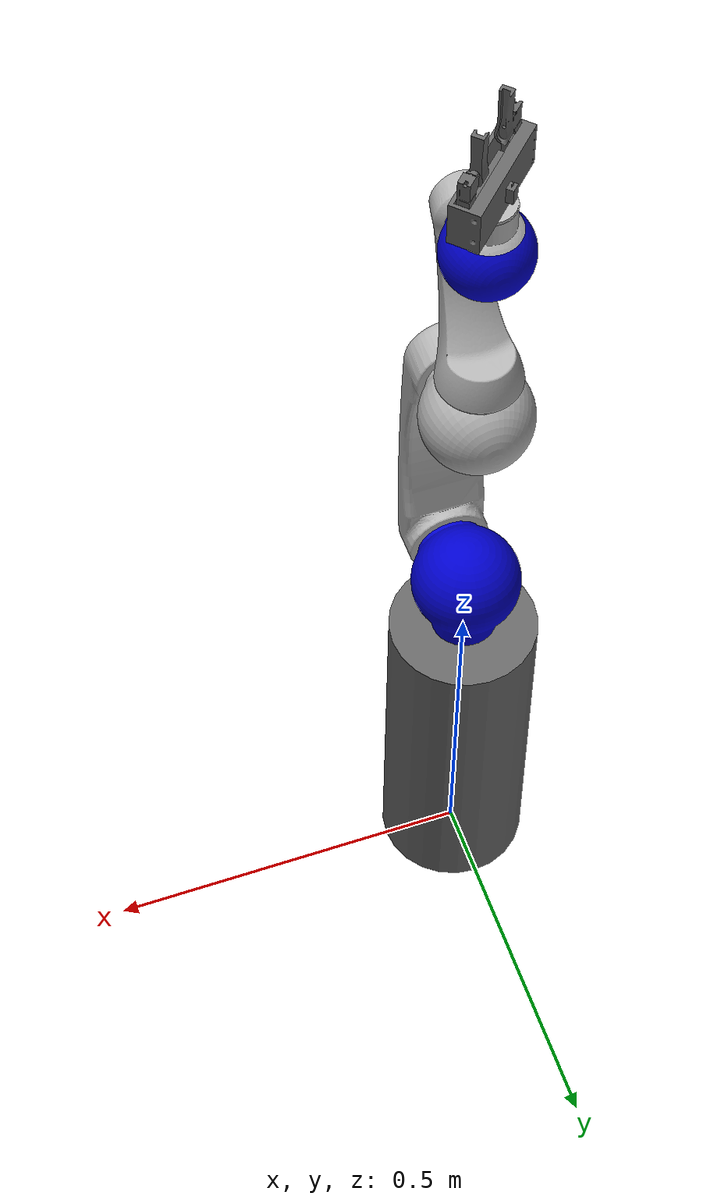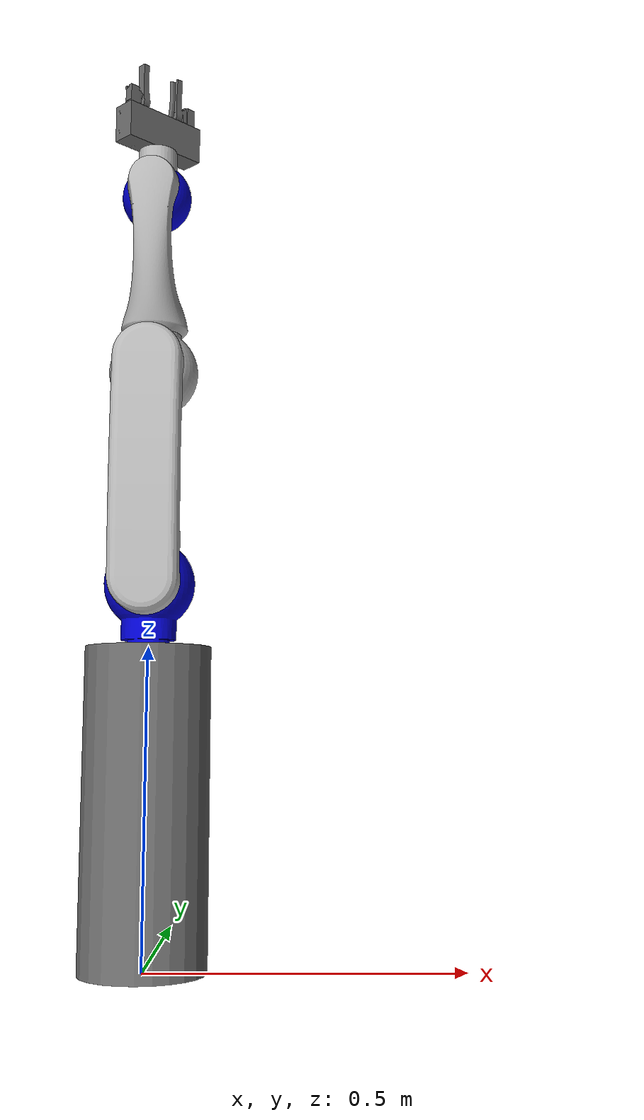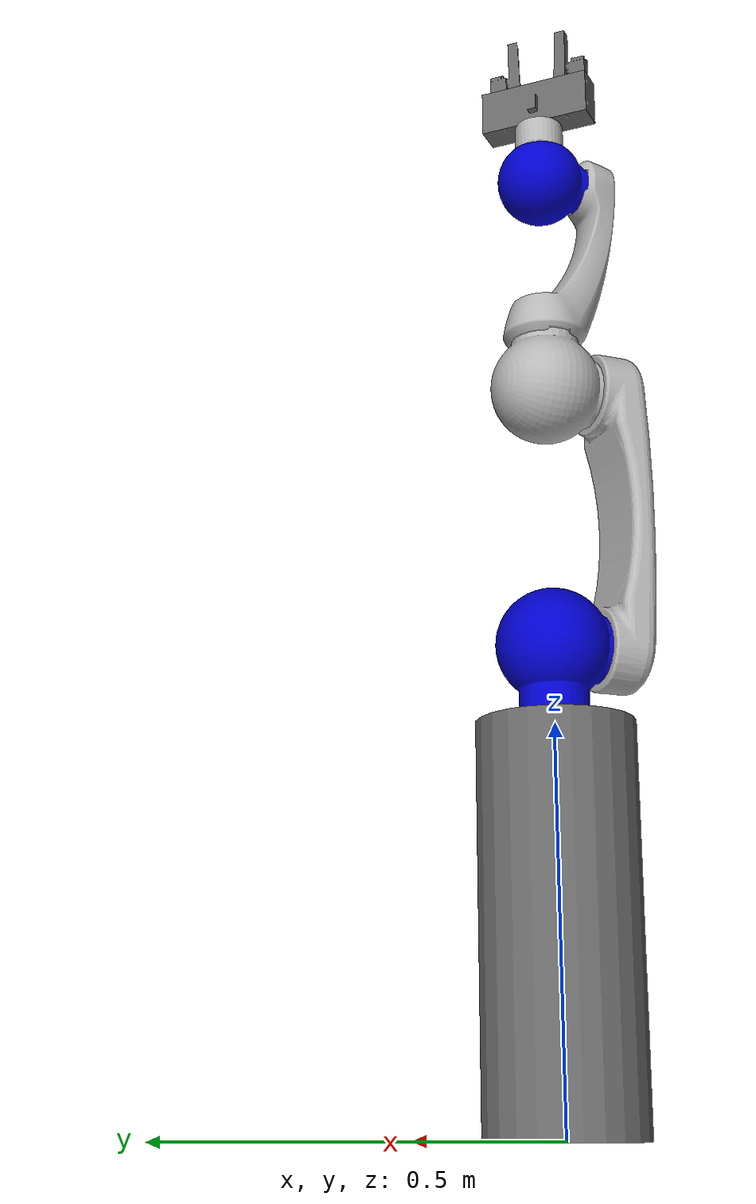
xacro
<?xml version="1.0" encoding="utf-8"?>
<robot xmlns:xacro="http://www.ros.org/wiki/xacro" name="lwa4p">
  <xacro:arg name="gazebo" default="true"/>

  <!-- includes -->
  <xacro:include filename="$(find schunk_lwa4p_description)/urdf/lwa4p/lwa4p_arm.xacro" >
  	<xacro:arg name="gazebo" value="${gazebo}"/>
  </xacro:include>
  <xacro:include filename="$(find schunk_lwa4p_description)/urdf/tools/hand.xacro"/>

   <!-- foot for arm -->
	<link name="base_link">
		<visual>
		   <origin xyz="0 0 0.25" rpy="0 0 0" />
		   <geometry>
			  <cylinder radius="0.1" length="0.5"/>
		   </geometry>
		   <material name="Schunk/DarkGrey" />
		</visual>
		<collision>
		   <origin xyz="0 0 0.25" rpy="0 0 0" />
		   <geometry>
			  <cylinder radius="0.1" length="0.5"/>
		   </geometry>
		</collision>
		<inertial>
		   <origin xyz="0 0 0.25" rpy="0 0 0"/>
		   <mass value="10000.0"/>
		   <inertia ixx="10000.0"  ixy="0"  ixz="0" iyy="10000.0" iyz="0" izz="10000.0" />
		</inertial>
	</link>

  <!-- arm -->
  <xacro:lwa4p_arm arm_id="lwa4p" parent="base_link" has_podest="true" >
    <origin xyz="0 0 0.50" rpy="0 0 0" />
  </xacro:lwa4p_arm>

  <!-- tool -->
  <xacro:hand ns="lwa4p" rpy="0 0 ${-pi/4}" connected_to="lwa4p_link6" safety_distance="0.03"/>

</robot>

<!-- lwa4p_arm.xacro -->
<robot xmlns:xacro="http://www.ros.org/wiki/xacro" name="lwa4p">

  <xacro:macro name="lwa4p_arm" params="parent arm_id *origin has_podest">

    <xacro:include filename="$(find schunk_lwa4p_description)/urdf/common.xacro"/>
    <xacro:property name="safety_offset" value="0.02"/>
    <xacro:property name="dynamics_damping" value="0.5"/>
    <xacro:property name="dynamics_friction" value="0.5"/>

    <xacro:arg name="gazebo" default="true"/>
    <xacro:if value="$(arg gazebo)">
      <!-- Gazebo Tags -->
      <xacro:include filename="$(find schunk_lwa4p_description)/urdf/lwa4p/lwa4p_arm.gazebo.xacro"/>
    </xacro:if>

     <xacro:if value="${has_podest}">
      <!-- joint between base_link and lwa4p_extended_connector_link -->
      <joint name="${arm_id}_podest_joint" type="fixed">
        <xacro:insert_block name="origin" />
        <parent link="${parent}"/>
        <child link="${arm_id}_podest_link"/>
      </joint>

      <link name="${arm_id}_podest_link">
        <xacro:default_inertial/>
        <visual>
          <origin xyz="0 0 0" rpy="0 ${M_PI} 0" />
          <geometry>
            <mesh filename="package://schunk_lwa4p_description/meshes/lwa4p/stl/arm_base_link.stl" />
          </geometry>
           <material name="Schunk/DarkGrey" />
        </visual>

        <collision>
          <origin xyz="0 0 0" rpy="0 ${M_PI} 0" />
          <geometry>
          <mesh filename="package://schunk_lwa4p_description/meshes/lwa4p/stl/arm_base_link.stl" />
          </geometry>
        </collision>
      </link>

      <joint name="${arm_id}_base_joint" type="fixed">
        <origin xyz="0 0 0.10" rpy="0 0 0" />
        <parent link="${arm_id}_podest_link"/>
        <child link="${arm_id}_base_link"/>
      </joint>
    </xacro:if>

    <xacro:unless value="${has_podest}">
      <!-- joint between base_link and lwa4p_extended_connector_link -->
      <joint name="${arm_id}_base_joint" type="fixed">
        <xacro:insert_block name="origin" />
        <parent link="${parent}"/>
        <child link="${arm_id}_base_link"/>
      </joint>
    </xacro:unless>

    <link name="${arm_id}_base_link">
      <xacro:default_inertial/>
    </link>

    <!-- Link 1 -->
    <link name="${arm_id}_link1">
      <xacro:default_inertial/>
      <inertial>
        <origin xyz="0 0 0" rpy="0 0 0" />
        <mass value="0.29364"/>
        <inertia ixx="0.01" ixy="0" ixz="0" iyy="0.01" iyz="0" izz="0.01" />
      </inertial>
      <visual>
        <origin xyz="0 0 0" rpy="0 0 0" />
        <geometry>
          <mesh filename="package://schunk_lwa4p_description/meshes/lwa4p/stl/arm_1_link.stl" />
        </geometry>
        <material name="Schunk/Blue" />
      </visual>
      <collision>
        <origin xyz="0 0 0" rpy="0 0 0" />
        <geometry>
          <mesh filename="package://schunk_lwa4p_description/meshes/lwa4p/stl/arm_1_link.stl" />
        </geometry>
      </collision>
    </link>

    <!-- Joint 1 -->
    <joint name="${arm_id}_joint1" type="revolute">
      <origin xyz="0 0 0" rpy="0 0 0" />
      <parent link="${arm_id}_base_link"/>
      <child link="${arm_id}_link1"/>
      <axis xyz="0 0 1"/>
      <dynamics damping="${dynamics_damping}" friction="${dynamics_friction}"/>
      <limit effort="370" velocity="1.26" lower="${-2.967 + safety_offset}" upper="${2.967 - safety_offset}"/>
      <safety_controller k_position="20" k_velocity="50" soft_lower_limit="${-6.28 + 0.01}" soft_upper_limit="${6.28 - 0.01}"/>
    </joint>

    <!-- Link 2 -->
    <link name="${arm_id}_link2">
      <xacro:default_inertial/>
      <inertial>
        <origin xyz="0 0 0" rpy="0 0 0"/>
        <mass value="1.68311" />
        <inertia ixx="0.03" ixy="0" ixz="0" iyy="0.03" iyz="0" izz="0.03" />
      </inertial>
      <visual>
        <origin xyz="0 0 0" rpy="0 0 0" />
        <geometry>
          <mesh filename="package://schunk_lwa4p_description/meshes/lwa4p/stl/arm_2_link.stl" />
        </geometry>
        <material name="Schunk/LightGrey" />
      </visual>
      <collision>
        <origin xyz="0 0 0" rpy="0 0 0" />
        <geometry>
          <mesh filename="package://schunk_lwa4p_description/meshes/lwa4p/stl/arm_2_link.stl" />
        </geometry>
      </collision>
    </link>

    <!-- Joint 2 -->
    <!-- joint between arm_1_link and arm_2_link -->
    <joint name="${arm_id}_joint2" type="revolute">
      <origin xyz="0 0 0" rpy="1.5708 0 0"/>
      <parent link="${arm_id}_link1"/>
      <child link="${arm_id}_link2"/>
      <axis xyz="0 0 1"/>
      <dynamics damping="${dynamics_damping}" friction="${dynamics_friction}"/>
      <limit effort="370" velocity="1.26" lower="${-2.967 + safety_offset}" upper="${2.967 - safety_offset}"/>
      <safety_controller k_position="20" k_velocity="50" soft_lower_limit="${-2.09 + 0.01}" soft_upper_limit="${2.09 - 0.01}" />
    </joint>

    <!-- Link 3 -->
    <link name="${arm_id}_link3">
      <xacro:default_inertial/>
      <inertial>
        <origin xyz="0 0 0" rpy="0 0 0"/>
        <mass value="2.1"/>
        <inertia ixx="0.03" ixy="0" ixz="0" iyy="0.03" iyz="0" izz="0.03" />
      </inertial>
      <visual>
        <origin xyz="0 0 0" rpy="0 0 0" />
        <geometry>
          <mesh filename="package://schunk_lwa4p_description/meshes/lwa4p/stl/arm_3_link.stl" />
        </geometry>
        <material name="Schunk/LightGrey" />
      </visual>
      <collision>
        <origin xyz="0 0 0" rpy="0 0 0" />
        <geometry>
          <mesh filename="package://schunk_lwa4p_description/meshes/lwa4p/stl/arm_3_link.stl" />
        </geometry>
      </collision>
    </link>

    <!-- Joint 3 -->
    <!-- joint between arm_2_link and arm_3_link -->
    <joint name="${arm_id}_joint3" type="revolute">
      <origin xyz="0 0.350 0" rpy="0 3.14159 0"/>
      <parent link="${arm_id}_link2"/>
      <child link="${arm_id}_link3"/>
      <axis xyz="0 0 1"/>
      <dynamics damping="${dynamics_damping}" friction="${dynamics_friction}"/>
      <limit effort="176" velocity="1.26" lower="${-2.714 + safety_offset}" upper="${2.714 - safety_offset}"/>
      <safety_controller k_position="20" k_velocity="25" soft_lower_limit="${-6.28 + 0.01}" soft_upper_limit="${6.28 - 0.01}" />
    </joint>

    <!-- Link 4 -->
    <link name="${arm_id}_link4">
      <xacro:default_inertial/>
      <inertial>
        <origin xyz="0 0 0" rpy="0 0 0"/>
        <mass value="1.68311"/>
        <inertia ixx="0.03" ixy="0" ixz="0" iyy="0.03" iyz="0" izz="0.03" />
      </inertial>
      <visual>
        <origin xyz="0 0 0" rpy="0 0 0" />
        <geometry>
          <mesh filename="package://schunk_lwa4p_description/meshes/lwa4p/stl/arm_4_link.stl" />
        </geometry>
        <material name="Schunk/LightGrey" />
      </visual>
      <collision>
        <origin xyz="0 0 0" rpy="0 0 0" />
        <geometry>
          <mesh filename="package://schunk_lwa4p_description/meshes/lwa4p/stl/arm_4_link.stl" />
        </geometry>
      </collision>
    </link>

    <!-- Joint 4 -->
    <!-- joint between arm_4_link and arm_5_link -->
    <joint name="${arm_id}_joint4" type="revolute">
      <origin xyz="0 0 0" rpy="-1.5708 3.14159 0" />
      <parent link="${arm_id}_link3"/>
      <child link="${arm_id}_link4"/>
      <axis xyz="0 0 1" />
      <dynamics damping="${dynamics_damping}" friction="${dynamics_friction}"/>
      <limit effort="176" velocity="1.26" lower="${-2.967 + safety_offset}" upper="${2.967 - safety_offset}"/>
      <safety_controller k_position="20" k_velocity="25" soft_lower_limit="${-2.09 + 0.01}" soft_upper_limit="${2.09 - 0.01}" />
    </joint>

    <!-- Link 5 -->
    <link name="${arm_id}_link5">
      <xacro:default_inertial/>
      <inertial>
        <origin xyz="0 0 0" rpy="0 0 0"/>
        <mass value="0.807"/>
        <inertia ixx="0.03" ixy="0" ixz="0" iyy="0.03" iyz="0" izz="0.03" />
      </inertial>
      <visual>
        <origin xyz="0 0 0" rpy="0 0 0" />
        <geometry>
          <mesh filename="package://schunk_lwa4p_description/meshes/lwa4p/stl/arm_5_link.stl" />
        </geometry>
        <material name="Schunk/Blue" />
      </visual>
      <collision>
        <origin xyz="0 0 0" rpy="0 0 0" />
        <geometry>
          <mesh filename="package://schunk_lwa4p_description/meshes/lwa4p/stl/arm_5_link.stl" />
        </geometry>
      </collision>
    </link>

    <!-- Joint 5 -->
    <!-- joint between arm_4_link and arm_5_link -->
    <joint name="${arm_id}_joint5" type="revolute">
      <origin xyz="0 0.0 0.305" rpy="1.5708 0 3.14159" />
      <parent link="${arm_id}_link4"/>
      <child link="${arm_id}_link5"/>
      <axis xyz="0 0 1" />
      <dynamics damping="${dynamics_damping}" friction="${dynamics_friction}"/>
      <limit effort="41.6" velocity="1.26" lower="${-2.967 + safety_offset}" upper="${2.967 - safety_offset}" />
      <safety_controller k_position="20" k_velocity="25" soft_lower_limit="${-6.28 + 0.01}" soft_upper_limit="${6.28 - 0.01}" />
    </joint>

    <!-- Link 6 -->
    <link name="${arm_id}_link6">
      <xacro:default_inertial/>
      <inertial>
        <origin xyz="0 0 0" rpy="0 0 0"/>
        <mass value="0.819"/>
        <inertia ixx="0.01" ixy="0" ixz="0" iyy="0.01" iyz="0" izz="0.01" />
      </inertial>
      <visual>
        <origin xyz="0 0 0" rpy="0 0 0" />
        <geometry>
          <mesh filename="package://schunk_lwa4p_description/meshes/lwa4p/stl/arm_6_link.stl" />
        </geometry>
        <material name="Schunk/LightGrey" />
      </visual>
      <collision>
        <origin xyz="0 0 0" rpy="0 0 0" />
        <geometry>
          <mesh filename="package://schunk_lwa4p_description/meshes/lwa4p/stl/arm_6_link.stl" />
        </geometry>
      </collision>
    </link>

    <!-- Joint 6 -->
    <!-- joint between arm_5_link and arm_6_link -->
    <joint name="${arm_id}_joint6" type="revolute">
      <origin xyz="0 0 0" rpy="-1.5708 0 0" />
      <parent link="${arm_id}_link5"/>
      <child link="${arm_id}_link6"/>
      <axis xyz="0 0 1" />
      <dynamics damping="${dynamics_damping}" friction="${dynamics_friction}"/>
      <limit effort="20.1" velocity="1.26" lower="${-2.967 + safety_offset}" upper="${2.967 - safety_offset}" />
      <safety_controller k_position="20" k_velocity="25" soft_lower_limit="${-2.09 + 0.01}" soft_upper_limit="${2.09 - 0.01}" />
    </joint>
  </xacro:macro>

</robot>

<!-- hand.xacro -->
<robot xmlns:xacro="http://www.ros.org/wiki/xacro" name="hand">
  <!-- safety_distance: Minimum safety distance in [m] by which the collision volumes are expanded and which is enforced during robot motions -->
  <xacro:macro name="hand" params="connected_to:='' ns:='' rpy:='0 0 0' xyz:='0 0 0.0824' safety_distance:=0">
    <xacro:unless value="${connected_to == ''}">
      <joint name="${ns}_hand_joint" type="fixed">

        <parent link="${connected_to}"/>
        <child link="${ns}_hand"/>
        <origin xyz="${xyz}" rpy="${rpy}"/>
      </joint>
    </xacro:unless>

    <xacro:arg name="gazebo" default="true"/>
    <xacro:if value="$(arg gazebo)">
      <!-- Gazebo Tags -->
      <xacro:include filename="$(find schunk_lwa4p_moveit)/urdf/tools/hand.gazebo.xacro"/>
    </xacro:if>

    <link name="${ns}_hand">
      <xacro:default_inertial/>
      <visual>
        <origin xyz="0 0 0" rpy="0 0 0" />
        <geometry>
          <mesh filename="package://schunk_lwa4p_moveit/meshes/gripper/base.stl" />
        </geometry>
        <material name="Schunk/DarkGrey" />
      </visual>
      <collision>
        <origin xyz="0 0 0" rpy="0 0 0" />
        <geometry>
          <mesh filename="package://schunk_lwa4p_moveit/meshes/gripper/base.stl" />
        </geometry>
      </collision>
    </link>

    <joint name="${ns}_finger_joint1" type="prismatic">
      <origin xyz="0 0 0" rpy="0 0 0"/>
      <parent link="${ns}_hand"/>
      <child link="${ns}_leftfinger"/>
      <axis xyz="0 1 0"/>
      <limit effort="20.1" velocity="1.26" lower="${-0.023}" upper="${0.0}" />
    </joint>

    <link name="${ns}_leftfinger">
      <xacro:default_inertial/>
      <visual>
        <origin xyz="0 0 0" rpy="0 0 0" />
        <geometry>
          <mesh filename="package://schunk_lwa4p_moveit/meshes/gripper/left.stl" />
        </geometry>
        <material name="Schunk/DarkGrey" />
      </visual>
      <collision>
        <origin xyz="0 0 0" rpy="0 0 0" />
        <geometry>
          <mesh filename="package://schunk_lwa4p_moveit/meshes/gripper/left.stl" />
        </geometry>
      </collision>
    </link>

    <joint name="${ns}_finger_joint2" type="prismatic">
      <origin xyz="0 0 0" rpy="0 0 0"/>
      <parent link="${ns}_hand"/>
      <child link="${ns}_rightfinger"/>
      <axis xyz="0 -1 0"/>
      <mimic joint="${ns}_finger_joint1" multiplier="1" offset="0"/>
      <limit effort="20.1" velocity="1.26" lower="${-0.023}" upper="${0.0}" />
    </joint>

    <link name="${ns}_rightfinger">
      <xacro:default_inertial/>
      <visual>
        <origin xyz="0 0 0" rpy="0 0 0" />
        <geometry>
          <mesh filename="package://schunk_lwa4p_moveit/meshes/gripper/right.stl" />
        </geometry>
        <material name="Schunk/DarkGrey" />
      </visual>
      <collision>
        <origin xyz="0 0 0" rpy="0 0 0" />
        <geometry>
          <mesh filename="package://schunk_lwa4p_moveit/meshes/gripper/right.stl" />
        </geometry>
      </collision>
    </link>

  </xacro:macro>
</robot>

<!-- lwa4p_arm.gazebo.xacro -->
<robot xmlns:xacro="http://www.ros.org/wiki/xacro" name="lwa4p">

  <xacro:include filename="$(find schunk_lwa4p_description)/urdf/materials.urdf.xacro"/>

  <gazebo>
    <plugin name="gazebo_ros_control" filename="libgazebo_ros_control.so">
      <robotNamespace>/lwa4p</robotNamespace>
      <legacyModeNS>true</legacyModeNS>
    </plugin>
  </gazebo>

  <gazebo reference="${arm_id}_link1">
    <gravity>true</gravity>
      <self_collide>false</self_collide>
      <material value="Gazebo/LightGrey" />
  </gazebo>

  <gazebo reference="${arm_id}_link2">
    <gravity>true</gravity>
    <self_collide>false</self_collide>
    <material value="Gazebo/Blue" />
  </gazebo>

  <gazebo reference="${arm_id}_link3">
    <gravity>true</gravity>
    <self_collide>false</self_collide>
    <material value="Gazebo/LightGrey" />
  </gazebo>

  <gazebo reference="${arm_id}_link4">
    <gravity>true</gravity>
    <self_collide>false</self_collide>
    <material value="Gazebo/Blue" />
  </gazebo>

  <gazebo reference="${arm_id}_link5">
    <gravity>true</gravity>
    <self_collide>false</self_collide>
    <material value="Gazebo/LightGrey" />
  </gazebo>

  <gazebo reference="${arm_id}_link6">
    <gravity>true</gravity>
    <self_collide>false</self_collide>
    <material value="Gazebo/Blue" />
  </gazebo>

  <gazebo reference="${arm_id}_link7">
    <gravity>true</gravity>
    <self_collide>false</self_collide>
    <material value="Gazebo/LightGrey" />
  </gazebo>

  <transmission name="${arm_id}_joint1_trans">
    <type>transmission_interface/SimpleTransmission</type>
    <joint name="${arm_id}_joint1">
      <hardwareInterface>hardware_interface/PositionJointInterface</hardwareInterface>
    </joint>
    <actuator name="${arm_id}_joint1_motor">
      <mechanicalReduction>1</mechanicalReduction>
    </actuator>
  </transmission>

  <transmission name="${arm_id}_joint2_trans">
    <type>transmission_interface/SimpleTransmission</type>
    <joint name="${arm_id}_joint2">
      <hardwareInterface>hardware_interface/PositionJointInterface</hardwareInterface>
      </joint>
    <actuator name="${arm_id}_joint2_motor">
      <mechanicalReduction>1</mechanicalReduction>
    </actuator>
  </transmission>

  <transmission name="${arm_id}_joint3_trans">
    <type>transmission_interface/SimpleTransmission</type>
    <joint name="${arm_id}_joint3">
      <hardwareInterface>hardware_interface/PositionJointInterface</hardwareInterface>
    </joint>
    <actuator name="${arm_id}_joint3_motor">
      <mechanicalReduction>1</mechanicalReduction>
    </actuator>
  </transmission>

  <transmission name="${arm_id}_joint4_trans">
    <type>transmission_interface/SimpleTransmission</type>
    <joint name="${arm_id}_joint4">
      <hardwareInterface>hardware_interface/PositionJointInterface</hardwareInterface>
    </joint>
    <actuator name="${arm_id}_joint4_motor">
      <mechanicalReduction>1</mechanicalReduction>
    </actuator>
  </transmission>

  <transmission name="${arm_id}_joint5_trans">
    <type>transmission_interface/SimpleTransmission</type>
    <joint name="${arm_id}_joint5">
      <hardwareInterface>hardware_interface/PositionJointInterface</hardwareInterface>
    </joint>
    <actuator name="${arm_id}_joint5_motor">
      <mechanicalReduction>1</mechanicalReduction>
    </actuator>
  </transmission>

  <transmission name="${arm_id}_joint6_trans">
    <type>transmission_interface/SimpleTransmission</type>
    <joint name="${arm_id}_joint6">
      <hardwareInterface>hardware_interface/PositionJointInterface</hardwareInterface>
    </joint>
    <actuator name="${arm_id}_joint6_motor">
      <mechanicalReduction>1</mechanicalReduction>
    </actuator>
  </transmission>

</robot>

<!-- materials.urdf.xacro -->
<robot>

  <material name="Schunk/LightGrey">
    <color rgba="0.7 0.7 0.7 1.0"/>
  </material>

  <material name="Schunk/DarkGrey">
    <color rgba="0.4 0.4 0.4 1.0"/>
  </material>

  <material name="Schunk/Black">
    <color rgba="0.0 0.0 0.0 1.0"/>
  </material>

  <material name="Schunk/DarkGolden">
    <color rgba="0.4 0.4 0.3 1.0"/>
  </material>

  <material name="Schunk/Blue">
    <color rgba="0.0 0.0 0.8 1.0"/>
  </material>

  <material name="Schunk/Red">
    <color rgba="0.8 0.0 0.0 1.0"/>
  </material>

</robot>
